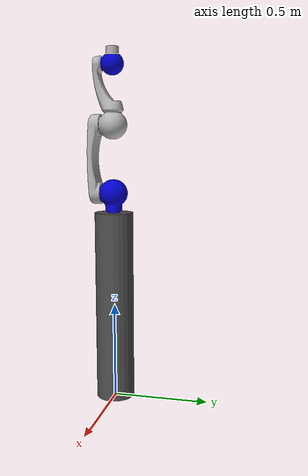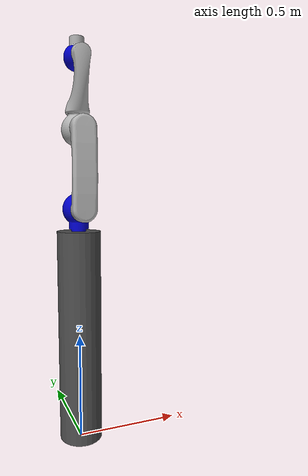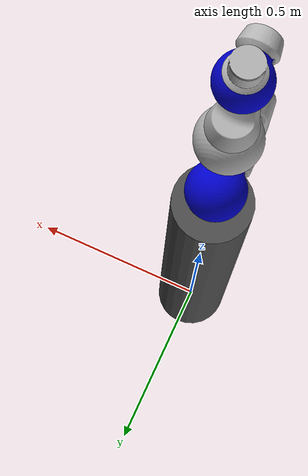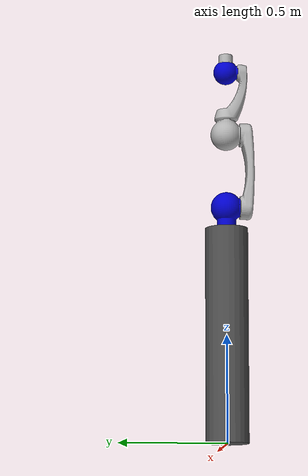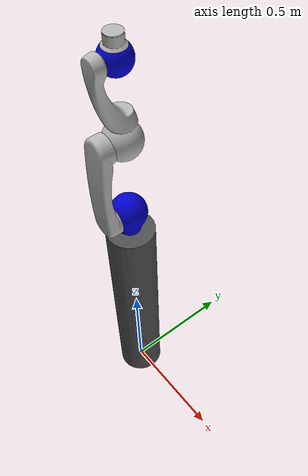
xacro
<?xml version='1.0' encoding='utf-8'?>
<robot xmlns:xacro="http://www.ros.org/wiki/xacro" name="lwa4p">

  <xacro:arg name="gazebo" default="true"/>

  <xacro:include filename="$(find schunk_lwa4p_description)/urdf/lwa4p/lwa4p_arm.xacro" >
  	<xacro:arg name="gazebo" value="${gazebo}"/>
  </xacro:include>

  <!-- foot for arm -->
	<link name="base_link">
		<visual>
		   <origin xyz="0 0 0.5" rpy="0 0 0" />
		   <geometry>
			  <cylinder radius="0.1" length="1.0"/>
		   </geometry>
		   <material name="Gazebo/DarkGrey" />
		</visual>
		<collision>
		   <origin xyz="0 0 0.5" rpy="0 0 0" />
		   <geometry>
			  <cylinder radius="0.1" length="1.0"/>
		   </geometry>
		</collision>
		<inertial>
		   <origin xyz="0 0 0.5" rpy="0 0 0"/>
		   <mass value="10000.0"/>
		   <inertia ixx="10000.0"  ixy="0"  ixz="0" iyy="10000.0" iyz="0" izz="10000.0" />
		</inertial>
	</link>

  <!-- arm -->
  <xacro:lwa4p_arm arm_id="lwa4p" parent="base_link" has_podest="true" >
    <origin xyz="0 0 1.0" rpy="0 0 0" />
  </xacro:lwa4p_arm>

</robot>

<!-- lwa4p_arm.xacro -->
<robot xmlns:xacro="http://www.ros.org/wiki/xacro" name="lwa4p">

  <xacro:macro name="lwa4p_arm" params="parent arm_id *origin has_podest">

    <xacro:include filename="$(find schunk_lwa4p_description)/urdf/common.xacro"/>
    <xacro:property name="safety_offset" value="0.02"/>
    <xacro:property name="dynamics_damping" value="0.5"/>
    <xacro:property name="dynamics_friction" value="0.5"/>

    <xacro:arg name="gazebo" default="true"/>
    <xacro:if value="$(arg gazebo)">
      <!-- Gazebo Tags -->
      <xacro:include filename="$(find schunk_lwa4p_description)/urdf/lwa4p/lwa4p_arm.gazebo.xacro"/>
    </xacro:if>

     <xacro:if value="${has_podest}">
      <!-- joint between base_link and lwa4p_extended_connector_link -->
      <joint name="${arm_id}_podest_joint" type="fixed">
        <xacro:insert_block name="origin" />
        <parent link="${parent}"/>
        <child link="${arm_id}_podest_link"/>
      </joint>

      <link name="${arm_id}_podest_link">
        <xacro:default_inertial/>
        <visual>
          <origin xyz="0 0 0" rpy="0 ${M_PI} 0" />
          <geometry>
            <mesh filename="package://schunk_lwa4p_description/meshes/lwa4p/stl/arm_base_link.stl" />
          </geometry>
           <material name="Schunk/DarkGrey" />
        </visual>

        <collision>
          <origin xyz="0 0 0" rpy="0 ${M_PI} 0" />
          <geometry>
          <mesh filename="package://schunk_lwa4p_description/meshes/lwa4p/stl/arm_base_link.stl" />
          </geometry>
        </collision>
      </link>

      <joint name="${arm_id}_base_joint" type="fixed">
        <origin xyz="0 0 0.10" rpy="0 0 0" />
        <parent link="${arm_id}_podest_link"/>
        <child link="${arm_id}_base_link"/>
      </joint>
    </xacro:if>

    <xacro:unless value="${has_podest}">
      <!-- joint between base_link and lwa4p_extended_connector_link -->
      <joint name="${arm_id}_base_joint" type="fixed">
        <xacro:insert_block name="origin" />
        <parent link="${parent}"/>
        <child link="${arm_id}_base_link"/>
      </joint>
    </xacro:unless>

    <link name="${arm_id}_base_link">
      <xacro:default_inertial/>
    </link>

    <!-- Link 1 -->
    <link name="${arm_id}_link1">
      <xacro:default_inertial/>
      <inertial>
        <origin xyz="0 0 0" rpy="0 0 0" />
        <mass value="0.29364"/>
        <inertia ixx="0.01" ixy="0" ixz="0" iyy="0.01" iyz="0" izz="0.01" />
      </inertial>
      <visual>
        <origin xyz="0 0 0" rpy="0 0 0" />
        <geometry>
          <mesh filename="package://schunk_lwa4p_description/meshes/lwa4p/stl/arm_1_link.stl" />
        </geometry>
        <material name="Schunk/Blue" />
      </visual>
      <collision>
        <origin xyz="0 0 0" rpy="0 0 0" />
        <geometry>
          <mesh filename="package://schunk_lwa4p_description/meshes/lwa4p/stl/arm_1_link.stl" />
        </geometry>
      </collision>
    </link>

    <!-- Joint 1 -->
    <joint name="${arm_id}_joint1" type="revolute">
      <origin xyz="0 0 0" rpy="0 0 0" />
      <parent link="${arm_id}_base_link"/>
      <child link="${arm_id}_link1"/>
      <axis xyz="0 0 1"/>
      <dynamics damping="${dynamics_damping}" friction="${dynamics_friction}"/>
      <limit effort="370" velocity="1.26" lower="${-2.967 + safety_offset}" upper="${2.967 - safety_offset}"/>
      <safety_controller k_position="20" k_velocity="50" soft_lower_limit="${-6.28 + 0.01}" soft_upper_limit="${6.28 - 0.01}"/>
    </joint>

    <!-- Link 2 -->
    <link name="${arm_id}_link2">
      <xacro:default_inertial/>
      <inertial>
        <origin xyz="0 0 0" rpy="0 0 0"/>
        <mass value="1.68311" />
        <inertia ixx="0.03" ixy="0" ixz="0" iyy="0.03" iyz="0" izz="0.03" />
      </inertial>
      <visual>
        <origin xyz="0 0 0" rpy="0 0 0" />
        <geometry>
          <mesh filename="package://schunk_lwa4p_description/meshes/lwa4p/stl/arm_2_link.stl" />
        </geometry>
        <material name="Schunk/LightGrey" />
      </visual>
      <collision>
        <origin xyz="0 0 0" rpy="0 0 0" />
        <geometry>
          <mesh filename="package://schunk_lwa4p_description/meshes/lwa4p/stl/arm_2_link.stl" />
        </geometry>
      </collision>
    </link>

    <!-- Joint 2 -->
    <!-- joint between arm_1_link and arm_2_link -->
    <joint name="${arm_id}_joint2" type="revolute">
      <origin xyz="0 0 0" rpy="1.5708 0 0"/>
      <parent link="${arm_id}_link1"/>
      <child link="${arm_id}_link2"/>
      <axis xyz="0 0 1"/>
      <dynamics damping="${dynamics_damping}" friction="${dynamics_friction}"/>
      <limit effort="370" velocity="1.26" lower="${-2.967 + safety_offset}" upper="${2.967 - safety_offset}"/>
      <safety_controller k_position="20" k_velocity="50" soft_lower_limit="${-2.09 + 0.01}" soft_upper_limit="${2.09 - 0.01}" />
    </joint>

    <!-- Link 3 -->
    <link name="${arm_id}_link3">
      <xacro:default_inertial/>
      <inertial>
        <origin xyz="0 0 0" rpy="0 0 0"/>
        <mass value="2.1"/>
        <inertia ixx="0.03" ixy="0" ixz="0" iyy="0.03" iyz="0" izz="0.03" />
      </inertial>
      <visual>
        <origin xyz="0 0 0" rpy="0 0 0" />
        <geometry>
          <mesh filename="package://schunk_lwa4p_description/meshes/lwa4p/stl/arm_3_link.stl" />
        </geometry>
        <material name="Schunk/LightGrey" />
      </visual>
      <collision>
        <origin xyz="0 0 0" rpy="0 0 0" />
        <geometry>
          <mesh filename="package://schunk_lwa4p_description/meshes/lwa4p/stl/arm_3_link.stl" />
        </geometry>
      </collision>
    </link>

    <!-- Joint 3 -->
    <!-- joint between arm_2_link and arm_3_link -->
    <joint name="${arm_id}_joint3" type="revolute">
      <origin xyz="0 0.350 0" rpy="0 3.14159 0"/>
      <parent link="${arm_id}_link2"/>
      <child link="${arm_id}_link3"/>
      <axis xyz="0 0 1"/>
      <dynamics damping="${dynamics_damping}" friction="${dynamics_friction}"/>
      <limit effort="176" velocity="1.26" lower="${-2.714 + safety_offset}" upper="${2.714 - safety_offset}"/>
      <safety_controller k_position="20" k_velocity="25" soft_lower_limit="${-6.28 + 0.01}" soft_upper_limit="${6.28 - 0.01}" />
    </joint>

    <!-- Link 4 -->
    <link name="${arm_id}_link4">
      <xacro:default_inertial/>
      <inertial>
        <origin xyz="0 0 0" rpy="0 0 0"/>
        <mass value="1.68311"/>
        <inertia ixx="0.03" ixy="0" ixz="0" iyy="0.03" iyz="0" izz="0.03" />
      </inertial>
      <visual>
        <origin xyz="0 0 0" rpy="0 0 0" />
        <geometry>
          <mesh filename="package://schunk_lwa4p_description/meshes/lwa4p/stl/arm_4_link.stl" />
        </geometry>
        <material name="Schunk/LightGrey" />
      </visual>
      <collision>
        <origin xyz="0 0 0" rpy="0 0 0" />
        <geometry>
          <mesh filename="package://schunk_lwa4p_description/meshes/lwa4p/stl/arm_4_link.stl" />
        </geometry>
      </collision>
    </link>

    <!-- Joint 4 -->
    <!-- joint between arm_4_link and arm_5_link -->
    <joint name="${arm_id}_joint4" type="revolute">
      <origin xyz="0 0 0" rpy="-1.5708 3.14159 0" />
      <parent link="${arm_id}_link3"/>
      <child link="${arm_id}_link4"/>
      <axis xyz="0 0 1" />
      <dynamics damping="${dynamics_damping}" friction="${dynamics_friction}"/>
      <limit effort="176" velocity="1.26" lower="${-2.967 + safety_offset}" upper="${2.967 - safety_offset}"/>
      <safety_controller k_position="20" k_velocity="25" soft_lower_limit="${-2.09 + 0.01}" soft_upper_limit="${2.09 - 0.01}" />
    </joint>

    <!-- Link 5 -->
    <link name="${arm_id}_link5">
      <xacro:default_inertial/>
      <inertial>
        <origin xyz="0 0 0" rpy="0 0 0"/>
        <mass value="0.807"/>
        <inertia ixx="0.03" ixy="0" ixz="0" iyy="0.03" iyz="0" izz="0.03" />
      </inertial>
      <visual>
        <origin xyz="0 0 0" rpy="0 0 0" />
        <geometry>
          <mesh filename="package://schunk_lwa4p_description/meshes/lwa4p/stl/arm_5_link.stl" />
        </geometry>
        <material name="Schunk/Blue" />
      </visual>
      <collision>
        <origin xyz="0 0 0" rpy="0 0 0" />
        <geometry>
          <mesh filename="package://schunk_lwa4p_description/meshes/lwa4p/stl/arm_5_link.stl" />
        </geometry>
      </collision>
    </link>

    <!-- Joint 5 -->
    <!-- joint between arm_4_link and arm_5_link -->
    <joint name="${arm_id}_joint5" type="revolute">
      <origin xyz="0 0.0 0.305" rpy="1.5708 0 3.14159" />
      <parent link="${arm_id}_link4"/>
      <child link="${arm_id}_link5"/>
      <axis xyz="0 0 1" />
      <dynamics damping="${dynamics_damping}" friction="${dynamics_friction}"/>
      <limit effort="41.6" velocity="1.26" lower="${-2.967 + safety_offset}" upper="${2.967 - safety_offset}" />
      <safety_controller k_position="20" k_velocity="25" soft_lower_limit="${-6.28 + 0.01}" soft_upper_limit="${6.28 - 0.01}" />
    </joint>

    <!-- Link 6 -->
    <link name="${arm_id}_link6">
      <xacro:default_inertial/>
      <inertial>
        <origin xyz="0 0 0" rpy="0 0 0"/>
        <mass value="0.819"/>
        <inertia ixx="0.01" ixy="0" ixz="0" iyy="0.01" iyz="0" izz="0.01" />
      </inertial>
      <visual>
        <origin xyz="0 0 0" rpy="0 0 0" />
        <geometry>
          <mesh filename="package://schunk_lwa4p_description/meshes/lwa4p/stl/arm_6_link.stl" />
        </geometry>
        <material name="Schunk/LightGrey" />
      </visual>
      <collision>
        <origin xyz="0 0 0" rpy="0 0 0" />
        <geometry>
          <mesh filename="package://schunk_lwa4p_description/meshes/lwa4p/stl/arm_6_link.stl" />
        </geometry>
      </collision>
    </link>

    <!-- Joint 6 -->
    <!-- joint between arm_5_link and arm_6_link -->
    <joint name="${arm_id}_joint6" type="revolute">
      <origin xyz="0 0 0" rpy="-1.5708 0 0" />
      <parent link="${arm_id}_link5"/>
      <child link="${arm_id}_link6"/>
      <axis xyz="0 0 1" />
      <dynamics damping="${dynamics_damping}" friction="${dynamics_friction}"/>
      <limit effort="20.1" velocity="1.26" lower="${-2.967 + safety_offset}" upper="${2.967 - safety_offset}" />
      <safety_controller k_position="20" k_velocity="25" soft_lower_limit="${-2.09 + 0.01}" soft_upper_limit="${2.09 - 0.01}" />
    </joint>
  </xacro:macro>

</robot>

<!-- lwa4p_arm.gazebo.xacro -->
<robot xmlns:xacro="http://www.ros.org/wiki/xacro" name="lwa4p">

  <xacro:include filename="$(find schunk_lwa4p_description)/urdf/materials.urdf.xacro"/>

  <gazebo reference="${arm_id}_link1">
    <gravity>true</gravity>
      <self_collide>false</self_collide>
      <material value="Gazebo/Grey" />
  </gazebo>

  <gazebo reference="${arm_id}_link2">
    <gravity>true</gravity>
    <self_collide>false</self_collide>
    <material value="Gazebo/Blue" />
  </gazebo>

  <gazebo reference="${arm_id}_link3">
    <gravity>true</gravity>
    <self_collide>false</self_collide>
    <material value="Gazebo/Grey" />
  </gazebo>

  <gazebo reference="${arm_id}_link4">
    <gravity>true</gravity>
    <self_collide>false</self_collide>
    <material value="Gazebo/Blue" />
  </gazebo>

  <gazebo reference="${arm_id}_link5">
    <gravity>true</gravity>
    <self_collide>false</self_collide>
    <material value="Gazebo/Grey" />
  </gazebo>

  <gazebo reference="${arm_id}_link6">
    <gravity>true</gravity>
    <self_collide>false</self_collide>
    <material value="Gazebo/Blue" />
  </gazebo>

  <!-- To have fully consistent Gazebo simulation it should have 2 IMUs for 1 power cable and 3 IMUs for 2 power cables -->

  <gazebo>
    <plugin name="gazebo_ros_control" filename="libgazebo_ros_control.so">
      <robotNamespace>/lwa4p</robotNamespace>
      <legacyModeNS>true</legacyModeNS>
    </plugin>
  </gazebo>

  <transmission name="${arm_id}_joint1_trans">
    <type>transmission_interface/SimpleTransmission</type>
    <joint name="${arm_id}_joint1">
      <hardwareInterface>hardware_interface/PositionJointInterface</hardwareInterface>
    </joint>
    <actuator name="${arm_id}_joint1_motor">
      <mechanicalReduction>1</mechanicalReduction>
    </actuator>
  </transmission>

  <transmission name="${arm_id}_joint2_trans">
    <type>transmission_interface/SimpleTransmission</type>
    <joint name="${arm_id}_joint2">
      <hardwareInterface>hardware_interface/PositionJointInterface</hardwareInterface>
    </joint>
    <actuator name="${arm_id}_joint2_motor">
      <mechanicalReduction>1</mechanicalReduction>
    </actuator>
  </transmission>

  <transmission name="${arm_id}_joint3_trans">
    <type>transmission_interface/SimpleTransmission</type>
    <joint name="${arm_id}_joint3">
      <hardwareInterface>hardware_interface/PositionJointInterface</hardwareInterface>
    </joint>
    <actuator name="${arm_id}_joint3_motor">
      <mechanicalReduction>1</mechanicalReduction>
    </actuator>
  </transmission>

  <transmission name="${arm_id}_joint4_trans">
    <type>transmission_interface/SimpleTransmission</type>
    <joint name="${arm_id}_joint4">
      <hardwareInterface>hardware_interface/PositionJointInterface</hardwareInterface>
    </joint>
    <actuator name="${arm_id}_joint4_motor">
      <mechanicalReduction>1</mechanicalReduction>
    </actuator>
  </transmission>

  <transmission name="${arm_id}_joint5_trans">
    <type>transmission_interface/SimpleTransmission</type>
    <joint name="${arm_id}_joint5">
      <hardwareInterface>hardware_interface/PositionJointInterface</hardwareInterface>
    </joint>
    <actuator name="${arm_id}_joint5_motor">
      <mechanicalReduction>1</mechanicalReduction>
    </actuator>
  </transmission>

  <transmission name="${arm_id}_joint6_trans">
    <type>transmission_interface/SimpleTransmission</type>
    <joint name="${arm_id}_joint6">
      <hardwareInterface>hardware_interface/PositionJointInterface</hardwareInterface>
    </joint>
    <actuator name="${arm_id}_joint6_motor">
      <mechanicalReduction>1</mechanicalReduction>
    </actuator>
  </transmission>

</robot>

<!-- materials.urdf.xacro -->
<robot>

  <material name="Schunk/LightGrey">
    <color rgba="0.7 0.7 0.7 1.0"/>
  </material>

  <material name="Schunk/DarkGrey">
    <color rgba="0.4 0.4 0.4 1.0"/>
  </material>

  <material name="Schunk/Black">
    <color rgba="0.0 0.0 0.0 1.0"/>
  </material>

  <material name="Schunk/DarkGolden">
    <color rgba="0.4 0.4 0.3 1.0"/>
  </material>

  <material name="Schunk/Blue">
    <color rgba="0.0 0.0 0.8 1.0"/>
  </material>

  <material name="Schunk/Red">
    <color rgba="0.8 0.0 0.0 1.0"/>
  </material>

</robot>
